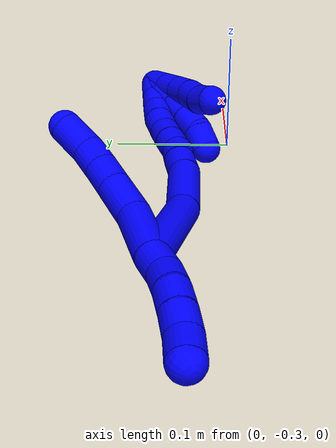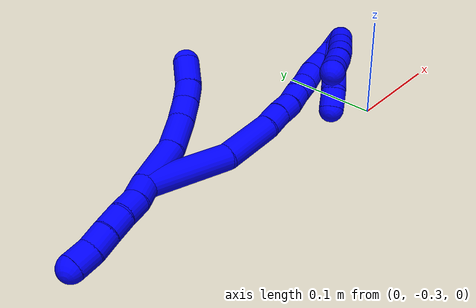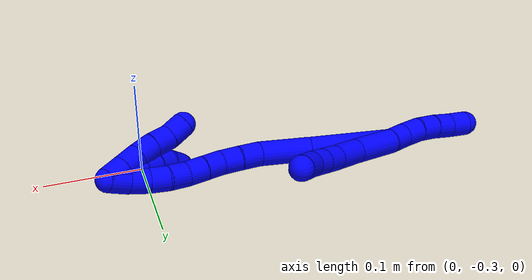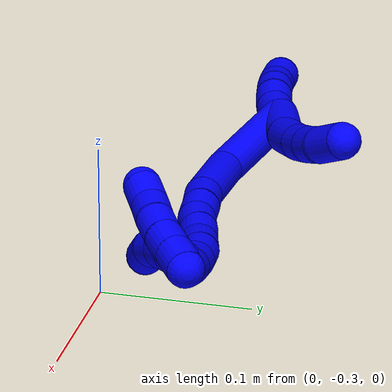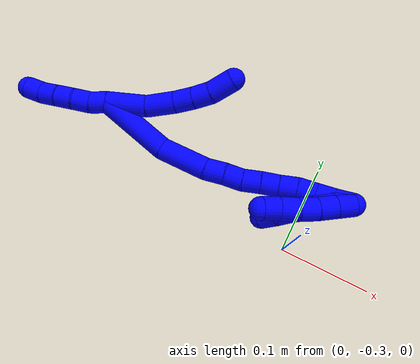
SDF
<sdf version="1.7">
 <world name="default">
  <model name="1">
   <static>0</static>
   <link name="1">
    <collision name="collision-cylinder-e_1_2_8">
     <pose>0.002755 0.001664 -0.023117 -3.06973 0.118313 -2.05056</pose>
     <geometry><cylinder><radius>0.0125</radius><length>0.046679</length></cylinder></geometry>
     <surface>
      <friction><ode><mu>1.16</mu><mu2>1.16</mu2><slip1>0</slip1><slip2>0</slip2></ode></friction>
      <contact><ode><kp>1e+06</kp><kd>1</kd><max_vel>0</max_vel><min_depth>0.001</min_depth></ode></contact>
     </surface>
    </collision>
    <visual name="visual-cylinder-e_1_2_8">
     <pose>0.002755 0.001664 -0.023117 -3.06973 0.118313 -2.05056</pose>
     <geometry><cylinder><radius>0.0125</radius><length>0.046679</length></cylinder></geometry>
     <material><ambient>0 0 1 1</ambient></material>
    </visual>
    <collision name="collision-cylinder-e_2_8_9">
     <pose>0.003696 0.00569 -0.06269 -2.99902 -0.108696 1.30209</pose>
     <geometry><cylinder><radius>0.0125</radius><length>0.033448</length></cylinder></geometry>
     <surface>
      <friction><ode><mu>1.16</mu><mu2>1.16</mu2><slip1>0</slip1><slip2>0</slip2></ode></friction>
      <contact><ode><kp>1e+06</kp><kd>1</kd><max_vel>0</max_vel><min_depth>0.001</min_depth></ode></contact>
     </surface>
    </collision>
    <visual name="visual-cylinder-e_2_8_9">
     <pose>0.003696 0.00569 -0.06269 -2.99902 -0.108696 1.30209</pose>
     <geometry><cylinder><radius>0.0125</radius><length>0.033448</length></cylinder></geometry>
     <material><ambient>0 0 1 1</ambient></material>
    </visual>
    <collision name="collision-cylinder-e_3_9_10">
     <pose>-2e-06 0.01026 -0.089709 -2.93561 -0.172765 1.3948</pose>
     <geometry><cylinder><radius>0.0125</radius><length>0.021907</length></cylinder></geometry>
     <surface>
      <friction><ode><mu>1.16</mu><mu2>1.16</mu2><slip1>0</slip1><slip2>0</slip2></ode></friction>
      <contact><ode><kp>1e+06</kp><kd>1</kd><max_vel>0</max_vel><min_depth>0.001</min_depth></ode></contact>
     </surface>
    </collision>
    <visual name="visual-cylinder-e_3_9_10">
     <pose>-2e-06 0.01026 -0.089709 -2.93561 -0.172765 1.3948</pose>
     <geometry><cylinder><radius>0.0125</radius><length>0.021907</length></cylinder></geometry>
     <material><ambient>0 0 1 1</ambient></material>
    </visual>
    <collision name="collision-cylinder-e_4_10_11">
     <pose>-0.004249 0.014768 -0.109858 -2.90598 -0.235351 1.56969</pose>
     <geometry><cylinder><radius>0.0125</radius><length>0.020277</length></cylinder></geometry>
     <surface>
      <friction><ode><mu>1.16</mu><mu2>1.16</mu2><slip1>0</slip1><slip2>0</slip2></ode></friction>
      <contact><ode><kp>1e+06</kp><kd>1</kd><max_vel>0</max_vel><min_depth>0.001</min_depth></ode></contact>
     </surface>
    </collision>
    <visual name="visual-cylinder-e_4_10_11">
     <pose>-0.004249 0.014768 -0.109858 -2.90598 -0.235351 1.56969</pose>
     <geometry><cylinder><radius>0.0125</radius><length>0.020277</length></cylinder></geometry>
     <material><ambient>0 0 1 1</ambient></material>
    </visual>
    <collision name="collision-cylinder-e_5_11_6">
     <pose>-0.012753 0.020597 -0.131341 -2.85332 -0.459518 2.0308</pose>
     <geometry><cylinder><radius>0.0125</radius><length>0.027689</length></cylinder></geometry>
     <surface>
      <friction><ode><mu>1.16</mu><mu2>1.16</mu2><slip1>0</slip1><slip2>0</slip2></ode></friction>
      <contact><ode><kp>1e+06</kp><kd>1</kd><max_vel>0</max_vel><min_depth>0.001</min_depth></ode></contact>
     </surface>
    </collision>
    <visual name="visual-cylinder-e_5_11_6">
     <pose>-0.012753 0.020597 -0.131341 -2.85332 -0.459518 2.0308</pose>
     <geometry><cylinder><radius>0.0125</radius><length>0.027689</length></cylinder></geometry>
     <material><ambient>0 0 1 1</ambient></material>
    </visual>
    <collision name="collision-cylinder-e_1_2_12">
     <pose>2.4e-05 -0.000102 0.009999 0.010167 0.002374 1.2e-05</pose>
     <geometry><cylinder><radius>0.0125</radius><length>0.02</length></cylinder></geometry>
     <surface>
      <friction><ode><mu>1.16</mu><mu2>1.16</mu2><slip1>0</slip1><slip2>0</slip2></ode></friction>
      <contact><ode><kp>1e+06</kp><kd>1</kd><max_vel>0</max_vel><min_depth>0.001</min_depth></ode></contact>
     </surface>
    </collision>
    <visual name="visual-cylinder-e_1_2_12">
     <pose>2.4e-05 -0.000102 0.009999 0.010167 0.002374 1.2e-05</pose>
     <geometry><cylinder><radius>0.0125</radius><length>0.02</length></cylinder></geometry>
     <material><ambient>0 0 1 1</ambient></material>
    </visual>
    <collision name="collision-cylinder-e_2_12_13">
     <pose>-0.002052 0.000295 0.029763 -0.05104 -0.211518 0.005419</pose>
     <geometry><cylinder><radius>0.0125</radius><length>0.02</length></cylinder></geometry>
     <surface>
      <friction><ode><mu>1.16</mu><mu2>1.16</mu2><slip1>0</slip1><slip2>0</slip2></ode></friction>
      <contact><ode><kp>1e+06</kp><kd>1</kd><max_vel>0</max_vel><min_depth>0.001</min_depth></ode></contact>
     </surface>
    </collision>
    <visual name="visual-cylinder-e_2_12_13">
     <pose>-0.002052 0.000295 0.029763 -0.05104 -0.211518 0.005419</pose>
     <geometry><cylinder><radius>0.0125</radius><length>0.02</length></cylinder></geometry>
     <material><ambient>0 0 1 1</ambient></material>
    </visual>
    <collision name="collision-cylinder-e_3_13_14">
     <pose>-0.006236 -0.000306 0.049246 0.112782 -0.20996 -0.011896</pose>
     <geometry><cylinder><radius>0.0125</radius><length>0.02</length></cylinder></geometry>
     <surface>
      <friction><ode><mu>1.16</mu><mu2>1.16</mu2><slip1>0</slip1><slip2>0</slip2></ode></friction>
      <contact><ode><kp>1e+06</kp><kd>1</kd><max_vel>0</max_vel><min_depth>0.001</min_depth></ode></contact>
     </surface>
    </collision>
    <visual name="visual-cylinder-e_3_13_14">
     <pose>-0.006236 -0.000306 0.049246 0.112782 -0.20996 -0.011896</pose>
     <geometry><cylinder><radius>0.0125</radius><length>0.02</length></cylinder></geometry>
     <material><ambient>0 0 1 1</ambient></material>
    </visual>
    <collision name="collision-cylinder-e_4_14_15">
     <pose>-0.010418 -0.003335 0.06855 0.198457 -0.211352 -0.021119</pose>
     <geometry><cylinder><radius>0.0125</radius><length>0.02</length></cylinder></geometry>
     <surface>
      <friction><ode><mu>1.16</mu><mu2>1.16</mu2><slip1>0</slip1><slip2>0</slip2></ode></friction>
      <contact><ode><kp>1e+06</kp><kd>1</kd><max_vel>0</max_vel><min_depth>0.001</min_depth></ode></contact>
     </surface>
    </collision>
    <visual name="visual-cylinder-e_4_14_15">
     <pose>-0.010418 -0.003335 0.06855 0.198457 -0.211352 -0.021119</pose>
     <geometry><cylinder><radius>0.0125</radius><length>0.02</length></cylinder></geometry>
     <material><ambient>0 0 1 1</ambient></material>
    </visual>
    <collision name="collision-cylinder-e_5_15_5">
     <pose>-0.015999 -0.0063 0.087451 0.110856 -0.355825 -0.019953</pose>
     <geometry><cylinder><radius>0.0125</radius><length>0.02</length></cylinder></geometry>
     <surface>
      <friction><ode><mu>1.16</mu><mu2>1.16</mu2><slip1>0</slip1><slip2>0</slip2></ode></friction>
      <contact><ode><kp>1e+06</kp><kd>1</kd><max_vel>0</max_vel><min_depth>0.001</min_depth></ode></contact>
     </surface>
    </collision>
    <visual name="visual-cylinder-e_5_15_5">
     <pose>-0.015999 -0.0063 0.087451 0.110856 -0.355825 -0.019953</pose>
     <geometry><cylinder><radius>0.0125</radius><length>0.02</length></cylinder></geometry>
     <material><ambient>0 0 1 1</ambient></material>
    </visual>
    <collision name="collision-cylinder-e_1_2_16">
     <pose>0.026603 0.000618 -0.031802 -3.12215 0.696519 -3.08807</pose>
     <geometry><cylinder><radius>0.0125</radius><length>0.082933</length></cylinder></geometry>
     <surface>
      <friction><ode><mu>1.16</mu><mu2>1.16</mu2><slip1>0</slip1><slip2>0</slip2></ode></friction>
      <contact><ode><kp>1e+06</kp><kd>1</kd><max_vel>0</max_vel><min_depth>0.001</min_depth></ode></contact>
     </surface>
    </collision>
    <visual name="visual-cylinder-e_1_2_16">
     <pose>0.026603 0.000618 -0.031802 -3.12215 0.696519 -3.08807</pose>
     <geometry><cylinder><radius>0.0125</radius><length>0.082933</length></cylinder></geometry>
     <material><ambient>0 0 1 1</ambient></material>
    </visual>
    <collision name="collision-cylinder-e_2_16_17">
     <pose>0.064667 0.00443 -0.088264 -3.01279 0.431899 -2.56975</pose>
     <geometry><cylinder><radius>0.0125</radius><length>0.05476</length></cylinder></geometry>
     <surface>
      <friction><ode><mu>1.16</mu><mu2>1.16</mu2><slip1>0</slip1><slip2>0</slip2></ode></friction>
      <contact><ode><kp>1e+06</kp><kd>1</kd><max_vel>0</max_vel><min_depth>0.001</min_depth></ode></contact>
     </surface>
    </collision>
    <visual name="visual-cylinder-e_2_16_17">
     <pose>0.064667 0.00443 -0.088264 -3.01279 0.431899 -2.56975</pose>
     <geometry><cylinder><radius>0.0125</radius><length>0.05476</length></cylinder></geometry>
     <material><ambient>0 0 1 1</ambient></material>
    </visual>
    <collision name="collision-cylinder-e_3_17_18">
     <pose>0.078866 0.008323 -0.12355 -3.07592 0.251663 -2.63352</pose>
     <geometry><cylinder><radius>0.0125</radius><length>0.021989</length></cylinder></geometry>
     <surface>
      <friction><ode><mu>1.16</mu><mu2>1.16</mu2><slip1>0</slip1><slip2>0</slip2></ode></friction>
      <contact><ode><kp>1e+06</kp><kd>1</kd><max_vel>0</max_vel><min_depth>0.001</min_depth></ode></contact>
     </surface>
    </collision>
    <visual name="visual-cylinder-e_3_17_18">
     <pose>0.078866 0.008323 -0.12355 -3.07592 0.251663 -2.63352</pose>
     <geometry><cylinder><radius>0.0125</radius><length>0.021989</length></cylinder></geometry>
     <material><ambient>0 0 1 1</ambient></material>
    </visual>
    <collision name="collision-cylinder-e_4_18_19">
     <pose>0.084912 0.009124 -0.143624 -3.13078 0.336766 -3.078</pose>
     <geometry><cylinder><radius>0.0125</radius><length>0.020024</length></cylinder></geometry>
     <surface>
      <friction><ode><mu>1.16</mu><mu2>1.16</mu2><slip1>0</slip1><slip2>0</slip2></ode></friction>
      <contact><ode><kp>1e+06</kp><kd>1</kd><max_vel>0</max_vel><min_depth>0.001</min_depth></ode></contact>
     </surface>
    </collision>
    <visual name="visual-cylinder-e_4_18_19">
     <pose>0.084912 0.009124 -0.143624 -3.13078 0.336766 -3.078</pose>
     <geometry><cylinder><radius>0.0125</radius><length>0.020024</length></cylinder></geometry>
     <material><ambient>0 0 1 1</ambient></material>
    </visual>
    <collision name="collision-cylinder-e_5_19_20">
     <pose>0.089494 0.009356 -0.16301 -3.12854 0.127385 -2.93764</pose>
     <geometry><cylinder><radius>0.0125</radius><length>0.020038</length></cylinder></geometry>
     <surface>
      <friction><ode><mu>1.16</mu><mu2>1.16</mu2><slip1>0</slip1><slip2>0</slip2></ode></friction>
      <contact><ode><kp>1e+06</kp><kd>1</kd><max_vel>0</max_vel><min_depth>0.001</min_depth></ode></contact>
     </surface>
    </collision>
    <visual name="visual-cylinder-e_5_19_20">
     <pose>0.089494 0.009356 -0.16301 -3.12854 0.127385 -2.93764</pose>
     <geometry><cylinder><radius>0.0125</radius><length>0.020038</length></cylinder></geometry>
     <material><ambient>0 0 1 1</ambient></material>
    </visual>
    <collision name="collision-cylinder-e_6_20_21">
     <pose>0.092642 0.009409 -0.182817 3.13381 0.18777 3.05898</pose>
     <geometry><cylinder><radius>0.0125</radius><length>0.020092</length></cylinder></geometry>
     <surface>
      <friction><ode><mu>1.16</mu><mu2>1.16</mu2><slip1>0</slip1><slip2>0</slip2></ode></friction>
      <contact><ode><kp>1e+06</kp><kd>1</kd><max_vel>0</max_vel><min_depth>0.001</min_depth></ode></contact>
     </surface>
    </collision>
    <visual name="visual-cylinder-e_6_20_21">
     <pose>0.092642 0.009409 -0.182817 3.13381 0.18777 3.05898</pose>
     <geometry><cylinder><radius>0.0125</radius><length>0.020092</length></cylinder></geometry>
     <material><ambient>0 0 1 1</ambient></material>
    </visual>
    <collision name="collision-cylinder-e_7_21_22">
     <pose>0.095799 0.0104 -0.202579 -3.03409 0.128123 -1.74575</pose>
     <geometry><cylinder><radius>0.0125</radius><length>0.020066</length></cylinder></geometry>
     <surface>
      <friction><ode><mu>1.16</mu><mu2>1.16</mu2><slip1>0</slip1><slip2>0</slip2></ode></friction>
      <contact><ode><kp>1e+06</kp><kd>1</kd><max_vel>0</max_vel><min_depth>0.001</min_depth></ode></contact>
     </surface>
    </collision>
    <visual name="visual-cylinder-e_7_21_22">
     <pose>0.095799 0.0104 -0.202579 -3.03409 0.128123 -1.74575</pose>
     <geometry><cylinder><radius>0.0125</radius><length>0.020066</length></cylinder></geometry>
     <material><ambient>0 0 1 1</ambient></material>
    </visual>
    <collision name="collision-cylinder-e_8_22_23">
     <pose>0.1001 0.012856 -0.22193 -2.99578 0.305883 -2.25666</pose>
     <geometry><cylinder><radius>0.0125</radius><length>0.020049</length></cylinder></geometry>
     <surface>
      <friction><ode><mu>1.16</mu><mu2>1.16</mu2><slip1>0</slip1><slip2>0</slip2></ode></friction>
      <contact><ode><kp>1e+06</kp><kd>1</kd><max_vel>0</max_vel><min_depth>0.001</min_depth></ode></contact>
     </surface>
    </collision>
    <visual name="visual-cylinder-e_8_22_23">
     <pose>0.1001 0.012856 -0.22193 -2.99578 0.305883 -2.25666</pose>
     <geometry><cylinder><radius>0.0125</radius><length>0.020049</length></cylinder></geometry>
     <material><ambient>0 0 1 1</ambient></material>
    </visual>
    <collision name="collision-cylinder-e_9_23_24">
     <pose>0.105997 0.016666 -0.240671 -2.88644 0.291503 -1.70525</pose>
     <geometry><cylinder><radius>0.0125</radius><length>0.020033</length></cylinder></geometry>
     <surface>
      <friction><ode><mu>1.16</mu><mu2>1.16</mu2><slip1>0</slip1><slip2>0</slip2></ode></friction>
      <contact><ode><kp>1e+06</kp><kd>1</kd><max_vel>0</max_vel><min_depth>0.001</min_depth></ode></contact>
     </surface>
    </collision>
    <visual name="visual-cylinder-e_9_23_24">
     <pose>0.105997 0.016666 -0.240671 -2.88644 0.291503 -1.70525</pose>
     <geometry><cylinder><radius>0.0125</radius><length>0.020033</length></cylinder></geometry>
     <material><ambient>0 0 1 1</ambient></material>
    </visual>
    <collision name="collision-cylinder-e_10_24_1">
     <pose>0.111251 0.022536 -0.259044 -2.77897 0.239617 -1.16211</pose>
     <geometry><cylinder><radius>0.0125</radius><length>0.020015</length></cylinder></geometry>
     <surface>
      <friction><ode><mu>1.16</mu><mu2>1.16</mu2><slip1>0</slip1><slip2>0</slip2></ode></friction>
      <contact><ode><kp>1e+06</kp><kd>1</kd><max_vel>0</max_vel><min_depth>0.001</min_depth></ode></contact>
     </surface>
    </collision>
    <visual name="visual-cylinder-e_10_24_1">
     <pose>0.111251 0.022536 -0.259044 -2.77897 0.239617 -1.16211</pose>
     <geometry><cylinder><radius>0.0125</radius><length>0.020015</length></cylinder></geometry>
     <material><ambient>0 0 1 1</ambient></material>
    </visual>
    <collision name="collision-cylinder-e_1_1_25">
     <pose>0.112839 0.024744 -0.258242 0.124799 -0.078813 -0.004927</pose>
     <geometry><cylinder><radius>0.0125</radius><length>0.02</length></cylinder></geometry>
     <surface>
      <friction><ode><mu>1.16</mu><mu2>1.16</mu2><slip1>0</slip1><slip2>0</slip2></ode></friction>
      <contact><ode><kp>1e+06</kp><kd>1</kd><max_vel>0</max_vel><min_depth>0.001</min_depth></ode></contact>
     </surface>
    </collision>
    <visual name="visual-cylinder-e_1_1_25">
     <pose>0.112839 0.024744 -0.258242 0.124799 -0.078813 -0.004927</pose>
     <geometry><cylinder><radius>0.0125</radius><length>0.02</length></cylinder></geometry>
     <material><ambient>0 0 1 1</ambient></material>
    </visual>
    <collision name="collision-cylinder-e_2_25_26">
     <pose>0.114057 0.022871 -0.238574 0.064623 0.201925 0.006549</pose>
     <geometry><cylinder><radius>0.0125</radius><length>0.02</length></cylinder></geometry>
     <surface>
      <friction><ode><mu>1.16</mu><mu2>1.16</mu2><slip1>0</slip1><slip2>0</slip2></ode></friction>
      <contact><ode><kp>1e+06</kp><kd>1</kd><max_vel>0</max_vel><min_depth>0.001</min_depth></ode></contact>
     </surface>
    </collision>
    <visual name="visual-cylinder-e_2_25_26">
     <pose>0.114057 0.022871 -0.238574 0.064623 0.201925 0.006549</pose>
     <geometry><cylinder><radius>0.0125</radius><length>0.02</length></cylinder></geometry>
     <material><ambient>0 0 1 1</ambient></material>
    </visual>
    <collision name="collision-cylinder-e_3_26_27">
     <pose>0.117987 0.020842 -0.219084 0.142708 0.193709 0.013889</pose>
     <geometry><cylinder><radius>0.0125</radius><length>0.02</length></cylinder></geometry>
     <surface>
      <friction><ode><mu>1.16</mu><mu2>1.16</mu2><slip1>0</slip1><slip2>0</slip2></ode></friction>
      <contact><ode><kp>1e+06</kp><kd>1</kd><max_vel>0</max_vel><min_depth>0.001</min_depth></ode></contact>
     </surface>
    </collision>
    <visual name="visual-cylinder-e_3_26_27">
     <pose>0.117987 0.020842 -0.219084 0.142708 0.193709 0.013889</pose>
     <geometry><cylinder><radius>0.0125</radius><length>0.02</length></cylinder></geometry>
     <material><ambient>0 0 1 1</ambient></material>
    </visual>
    <collision name="collision-cylinder-e_4_27_28">
     <pose>0.122382 0.01724 -0.199935 0.229762 0.249548 0.028944</pose>
     <geometry><cylinder><radius>0.0125</radius><length>0.02</length></cylinder></geometry>
     <surface>
      <friction><ode><mu>1.16</mu><mu2>1.16</mu2><slip1>0</slip1><slip2>0</slip2></ode></friction>
      <contact><ode><kp>1e+06</kp><kd>1</kd><max_vel>0</max_vel><min_depth>0.001</min_depth></ode></contact>
     </surface>
    </collision>
    <visual name="visual-cylinder-e_4_27_28">
     <pose>0.122382 0.01724 -0.199935 0.229762 0.249548 0.028944</pose>
     <geometry><cylinder><radius>0.0125</radius><length>0.02</length></cylinder></geometry>
     <material><ambient>0 0 1 1</ambient></material>
    </visual>
    <collision name="collision-cylinder-e_5_28_4">
     <pose>0.12686 0.0097 -0.182282 0.575638 0.202219 0.060052</pose>
     <geometry><cylinder><radius>0.0125</radius><length>0.02</length></cylinder></geometry>
     <surface>
      <friction><ode><mu>1.16</mu><mu2>1.16</mu2><slip1>0</slip1><slip2>0</slip2></ode></friction>
      <contact><ode><kp>1e+06</kp><kd>1</kd><max_vel>0</max_vel><min_depth>0.001</min_depth></ode></contact>
     </surface>
    </collision>
    <visual name="visual-cylinder-e_5_28_4">
     <pose>0.12686 0.0097 -0.182282 0.575638 0.202219 0.060052</pose>
     <geometry><cylinder><radius>0.0125</radius><length>0.02</length></cylinder></geometry>
     <material><ambient>0 0 1 1</ambient></material>
    </visual>
    <collision name="collision-cylinder-e_1_1_29">
     <pose>0.114672 0.028413 -0.258489 -0.246617 0.10482 -0.013003</pose>
     <geometry><cylinder><radius>0.0125</radius><length>0.02</length></cylinder></geometry>
     <surface>
      <friction><ode><mu>1.16</mu><mu2>1.16</mu2><slip1>0</slip1><slip2>0</slip2></ode></friction>
      <contact><ode><kp>1e+06</kp><kd>1</kd><max_vel>0</max_vel><min_depth>0.001</min_depth></ode></contact>
     </surface>
    </collision>
    <visual name="visual-cylinder-e_1_1_29">
     <pose>0.114672 0.028413 -0.258489 -0.246617 0.10482 -0.013003</pose>
     <geometry><cylinder><radius>0.0125</radius><length>0.02</length></cylinder></geometry>
     <material><ambient>0 0 1 1</ambient></material>
    </visual>
    <collision name="collision-cylinder-e_2_29_30">
     <pose>0.116775 0.033285 -0.239206 -0.248392 0.105875 -0.013229</pose>
     <geometry><cylinder><radius>0.0125</radius><length>0.02</length></cylinder></geometry>
     <surface>
      <friction><ode><mu>1.16</mu><mu2>1.16</mu2><slip1>0</slip1><slip2>0</slip2></ode></friction>
      <contact><ode><kp>1e+06</kp><kd>1</kd><max_vel>0</max_vel><min_depth>0.001</min_depth></ode></contact>
     </surface>
    </collision>
    <visual name="visual-cylinder-e_2_29_30">
     <pose>0.116775 0.033285 -0.239206 -0.248392 0.105875 -0.013229</pose>
     <geometry><cylinder><radius>0.0125</radius><length>0.02</length></cylinder></geometry>
     <material><ambient>0 0 1 1</ambient></material>
    </visual>
    <collision name="collision-cylinder-e_3_30_31">
     <pose>0.118136 0.038087 -0.219853 -0.238027 0.030374 -0.003632</pose>
     <geometry><cylinder><radius>0.0125</radius><length>0.02</length></cylinder></geometry>
     <surface>
      <friction><ode><mu>1.16</mu><mu2>1.16</mu2><slip1>0</slip1><slip2>0</slip2></ode></friction>
      <contact><ode><kp>1e+06</kp><kd>1</kd><max_vel>0</max_vel><min_depth>0.001</min_depth></ode></contact>
     </surface>
    </collision>
    <visual name="visual-cylinder-e_3_30_31">
     <pose>0.118136 0.038087 -0.219853 -0.238027 0.030374 -0.003632</pose>
     <geometry><cylinder><radius>0.0125</radius><length>0.02</length></cylinder></geometry>
     <material><ambient>0 0 1 1</ambient></material>
    </visual>
    <collision name="collision-cylinder-e_4_31_32">
     <pose>0.117907 0.041676 -0.20023 -0.123774 -0.053296 0.003303</pose>
     <geometry><cylinder><radius>0.0125</radius><length>0.02</length></cylinder></geometry>
     <surface>
      <friction><ode><mu>1.16</mu><mu2>1.16</mu2><slip1>0</slip1><slip2>0</slip2></ode></friction>
      <contact><ode><kp>1e+06</kp><kd>1</kd><max_vel>0</max_vel><min_depth>0.001</min_depth></ode></contact>
     </surface>
    </collision>
    <visual name="visual-cylinder-e_4_31_32">
     <pose>0.117907 0.041676 -0.20023 -0.123774 -0.053296 0.003303</pose>
     <geometry><cylinder><radius>0.0125</radius><length>0.02</length></cylinder></geometry>
     <material><ambient>0 0 1 1</ambient></material>
    </visual>
    <collision name="collision-cylinder-e_5_32_3">
     <pose>0.117301 0.0465 -0.180988 -0.367301 -0.007336 0.001363</pose>
     <geometry><cylinder><radius>0.0125</radius><length>0.02</length></cylinder></geometry>
     <surface>
      <friction><ode><mu>1.16</mu><mu2>1.16</mu2><slip1>0</slip1><slip2>0</slip2></ode></friction>
      <contact><ode><kp>1e+06</kp><kd>1</kd><max_vel>0</max_vel><min_depth>0.001</min_depth></ode></contact>
     </surface>
    </collision>
    <visual name="visual-cylinder-e_5_32_3">
     <pose>0.117301 0.0465 -0.180988 -0.367301 -0.007336 0.001363</pose>
     <geometry><cylinder><radius>0.0125</radius><length>0.02</length></cylinder></geometry>
     <material><ambient>0 0 1 1</ambient></material>
    </visual>
    <collision name="collision-sphere-3">
     <pose>0.117227 0.050091 -0.171655 0 -0 0</pose>
     <geometry><sphere><radius>0.0125</radius></sphere></geometry>
     <surface>
      <friction><ode><mu>1.16</mu><mu2>1.16</mu2><slip1>0</slip1><slip2>0</slip2></ode></friction>
      <contact><ode><kp>1e+06</kp><kd>1</kd><max_vel>0</max_vel><min_depth>0.001</min_depth></ode></contact>
     </surface>
    </collision>
    <visual name="visual-sphere-3">
     <pose>0.117227 0.050091 -0.171655 0 -0 0</pose>
     <geometry><sphere><radius>0.0125</radius></sphere></geometry>
     <material><ambient>0 0 1 1</ambient></material>
    </visual>
    <collision name="collision-sphere-32">
     <pose>0.117374 0.042909 -0.190321 0 -0 0</pose>
     <geometry><sphere><radius>0.0125</radius></sphere></geometry>
     <surface>
      <friction><ode><mu>1.16</mu><mu2>1.16</mu2><slip1>0</slip1><slip2>0</slip2></ode></friction>
      <contact><ode><kp>1e+06</kp><kd>1</kd><max_vel>0</max_vel><min_depth>0.001</min_depth></ode></contact>
     </surface>
    </collision>
    <visual name="visual-sphere-32">
     <pose>0.117374 0.042909 -0.190321 0 -0 0</pose>
     <geometry><sphere><radius>0.0125</radius></sphere></geometry>
     <material><ambient>0 0 1 1</ambient></material>
    </visual>
    <collision name="collision-sphere-31">
     <pose>0.118439 0.040444 -0.21014 0 -0 0</pose>
     <geometry><sphere><radius>0.0125</radius></sphere></geometry>
     <surface>
      <friction><ode><mu>1.16</mu><mu2>1.16</mu2><slip1>0</slip1><slip2>0</slip2></ode></friction>
      <contact><ode><kp>1e+06</kp><kd>1</kd><max_vel>0</max_vel><min_depth>0.001</min_depth></ode></contact>
     </surface>
    </collision>
    <visual name="visual-sphere-31">
     <pose>0.118439 0.040444 -0.21014 0 -0 0</pose>
     <geometry><sphere><radius>0.0125</radius></sphere></geometry>
     <material><ambient>0 0 1 1</ambient></material>
    </visual>
    <collision name="collision-sphere-30">
     <pose>0.117832 0.03573 -0.229567 0 -0 0</pose>
     <geometry><sphere><radius>0.0125</radius></sphere></geometry>
     <surface>
      <friction><ode><mu>1.16</mu><mu2>1.16</mu2><slip1>0</slip1><slip2>0</slip2></ode></friction>
      <contact><ode><kp>1e+06</kp><kd>1</kd><max_vel>0</max_vel><min_depth>0.001</min_depth></ode></contact>
     </surface>
    </collision>
    <visual name="visual-sphere-30">
     <pose>0.117832 0.03573 -0.229567 0 -0 0</pose>
     <geometry><sphere><radius>0.0125</radius></sphere></geometry>
     <material><ambient>0 0 1 1</ambient></material>
    </visual>
    <collision name="collision-sphere-29">
     <pose>0.115718 0.030841 -0.248845 0 -0 0</pose>
     <geometry><sphere><radius>0.0125</radius></sphere></geometry>
     <surface>
      <friction><ode><mu>1.16</mu><mu2>1.16</mu2><slip1>0</slip1><slip2>0</slip2></ode></friction>
      <contact><ode><kp>1e+06</kp><kd>1</kd><max_vel>0</max_vel><min_depth>0.001</min_depth></ode></contact>
     </surface>
    </collision>
    <visual name="visual-sphere-29">
     <pose>0.115718 0.030841 -0.248845 0 -0 0</pose>
     <geometry><sphere><radius>0.0125</radius></sphere></geometry>
     <material><ambient>0 0 1 1</ambient></material>
    </visual>
    <collision name="collision-sphere-4">
     <pose>0.128869 0.004367 -0.174065 0 -0 0</pose>
     <geometry><sphere><radius>0.0125</radius></sphere></geometry>
     <surface>
      <friction><ode><mu>1.16</mu><mu2>1.16</mu2><slip1>0</slip1><slip2>0</slip2></ode></friction>
      <contact><ode><kp>1e+06</kp><kd>1</kd><max_vel>0</max_vel><min_depth>0.001</min_depth></ode></contact>
     </surface>
    </collision>
    <visual name="visual-sphere-4">
     <pose>0.128869 0.004367 -0.174065 0 -0 0</pose>
     <geometry><sphere><radius>0.0125</radius></sphere></geometry>
     <material><ambient>0 0 1 1</ambient></material>
    </visual>
    <collision name="collision-sphere-28">
     <pose>0.124852 0.015033 -0.1905 0 -0 0</pose>
     <geometry><sphere><radius>0.0125</radius></sphere></geometry>
     <surface>
      <friction><ode><mu>1.16</mu><mu2>1.16</mu2><slip1>0</slip1><slip2>0</slip2></ode></friction>
      <contact><ode><kp>1e+06</kp><kd>1</kd><max_vel>0</max_vel><min_depth>0.001</min_depth></ode></contact>
     </surface>
    </collision>
    <visual name="visual-sphere-28">
     <pose>0.124852 0.015033 -0.1905 0 -0 0</pose>
     <geometry><sphere><radius>0.0125</radius></sphere></geometry>
     <material><ambient>0 0 1 1</ambient></material>
    </visual>
    <collision name="collision-sphere-27">
     <pose>0.119912 0.019447 -0.209371 0 -0 0</pose>
     <geometry><sphere><radius>0.0125</radius></sphere></geometry>
     <surface>
      <friction><ode><mu>1.16</mu><mu2>1.16</mu2><slip1>0</slip1><slip2>0</slip2></ode></friction>
      <contact><ode><kp>1e+06</kp><kd>1</kd><max_vel>0</max_vel><min_depth>0.001</min_depth></ode></contact>
     </surface>
    </collision>
    <visual name="visual-sphere-27">
     <pose>0.119912 0.019447 -0.209371 0 -0 0</pose>
     <geometry><sphere><radius>0.0125</radius></sphere></geometry>
     <material><ambient>0 0 1 1</ambient></material>
    </visual>
    <collision name="collision-sphere-26">
     <pose>0.116062 0.022238 -0.228797 0 -0 0</pose>
     <geometry><sphere><radius>0.0125</radius></sphere></geometry>
     <surface>
      <friction><ode><mu>1.16</mu><mu2>1.16</mu2><slip1>0</slip1><slip2>0</slip2></ode></friction>
      <contact><ode><kp>1e+06</kp><kd>1</kd><max_vel>0</max_vel><min_depth>0.001</min_depth></ode></contact>
     </surface>
    </collision>
    <visual name="visual-sphere-26">
     <pose>0.116062 0.022238 -0.228797 0 -0 0</pose>
     <geometry><sphere><radius>0.0125</radius></sphere></geometry>
     <material><ambient>0 0 1 1</ambient></material>
    </visual>
    <collision name="collision-sphere-25">
     <pose>0.112051 0.023503 -0.24835 0 -0 0</pose>
     <geometry><sphere><radius>0.0125</radius></sphere></geometry>
     <surface>
      <friction><ode><mu>1.16</mu><mu2>1.16</mu2><slip1>0</slip1><slip2>0</slip2></ode></friction>
      <contact><ode><kp>1e+06</kp><kd>1</kd><max_vel>0</max_vel><min_depth>0.001</min_depth></ode></contact>
     </surface>
    </collision>
    <visual name="visual-sphere-25">
     <pose>0.112051 0.023503 -0.24835 0 -0 0</pose>
     <geometry><sphere><radius>0.0125</radius></sphere></geometry>
     <material><ambient>0 0 1 1</ambient></material>
    </visual>
    <collision name="collision-sphere-1">
     <pose>0.113626 0.025985 -0.268133 0 -0 0</pose>
     <geometry><sphere><radius>0.0125</radius></sphere></geometry>
     <surface>
      <friction><ode><mu>1.16</mu><mu2>1.16</mu2><slip1>0</slip1><slip2>0</slip2></ode></friction>
      <contact><ode><kp>1e+06</kp><kd>1</kd><max_vel>0</max_vel><min_depth>0.001</min_depth></ode></contact>
     </surface>
    </collision>
    <visual name="visual-sphere-1">
     <pose>0.113626 0.025985 -0.268133 0 -0 0</pose>
     <geometry><sphere><radius>0.0125</radius></sphere></geometry>
     <material><ambient>0 0 1 1</ambient></material>
    </visual>
    <collision name="collision-sphere-24">
     <pose>0.108876 0.019088 -0.249954 0 -0 0</pose>
     <geometry><sphere><radius>0.0125</radius></sphere></geometry>
     <surface>
      <friction><ode><mu>1.16</mu><mu2>1.16</mu2><slip1>0</slip1><slip2>0</slip2></ode></friction>
      <contact><ode><kp>1e+06</kp><kd>1</kd><max_vel>0</max_vel><min_depth>0.001</min_depth></ode></contact>
     </surface>
    </collision>
    <visual name="visual-sphere-24">
     <pose>0.108876 0.019088 -0.249954 0 -0 0</pose>
     <geometry><sphere><radius>0.0125</radius></sphere></geometry>
     <material><ambient>0 0 1 1</ambient></material>
    </visual>
    <collision name="collision-sphere-23">
     <pose>0.103118 0.014245 -0.231388 0 -0 0</pose>
     <geometry><sphere><radius>0.0125</radius></sphere></geometry>
     <surface>
      <friction><ode><mu>1.16</mu><mu2>1.16</mu2><slip1>0</slip1><slip2>0</slip2></ode></friction>
      <contact><ode><kp>1e+06</kp><kd>1</kd><max_vel>0</max_vel><min_depth>0.001</min_depth></ode></contact>
     </surface>
    </collision>
    <visual name="visual-sphere-23">
     <pose>0.103118 0.014245 -0.231388 0 -0 0</pose>
     <geometry><sphere><radius>0.0125</radius></sphere></geometry>
     <material><ambient>0 0 1 1</ambient></material>
    </visual>
    <collision name="collision-sphere-22">
     <pose>0.097081 0.011467 -0.212472 0 -0 0</pose>
     <geometry><sphere><radius>0.0125</radius></sphere></geometry>
     <surface>
      <friction><ode><mu>1.16</mu><mu2>1.16</mu2><slip1>0</slip1><slip2>0</slip2></ode></friction>
      <contact><ode><kp>1e+06</kp><kd>1</kd><max_vel>0</max_vel><min_depth>0.001</min_depth></ode></contact>
     </surface>
    </collision>
    <visual name="visual-sphere-22">
     <pose>0.097081 0.011467 -0.212472 0 -0 0</pose>
     <geometry><sphere><radius>0.0125</radius></sphere></geometry>
     <material><ambient>0 0 1 1</ambient></material>
    </visual>
    <collision name="collision-sphere-21">
     <pose>0.094517 0.009332 -0.192686 0 -0 0</pose>
     <geometry><sphere><radius>0.0125</radius></sphere></geometry>
     <surface>
      <friction><ode><mu>1.16</mu><mu2>1.16</mu2><slip1>0</slip1><slip2>0</slip2></ode></friction>
      <contact><ode><kp>1e+06</kp><kd>1</kd><max_vel>0</max_vel><min_depth>0.001</min_depth></ode></contact>
     </surface>
    </collision>
    <visual name="visual-sphere-21">
     <pose>0.094517 0.009332 -0.192686 0 -0 0</pose>
     <geometry><sphere><radius>0.0125</radius></sphere></geometry>
     <material><ambient>0 0 1 1</ambient></material>
    </visual>
    <collision name="collision-sphere-6">
     <pose>-0.018893 0.024125 -0.143237 0 -0 0</pose>
     <geometry><sphere><radius>0.0125</radius></sphere></geometry>
     <surface>
      <friction><ode><mu>1.16</mu><mu2>1.16</mu2><slip1>0</slip1><slip2>0</slip2></ode></friction>
      <contact><ode><kp>1e+06</kp><kd>1</kd><max_vel>0</max_vel><min_depth>0.001</min_depth></ode></contact>
     </surface>
    </collision>
    <visual name="visual-sphere-6">
     <pose>-0.018893 0.024125 -0.143237 0 -0 0</pose>
     <geometry><sphere><radius>0.0125</radius></sphere></geometry>
     <material><ambient>0 0 1 1</ambient></material>
    </visual>
    <collision name="collision-sphere-11">
     <pose>-0.006613 0.01707 -0.119444 0 -0 0</pose>
     <geometry><sphere><radius>0.0125</radius></sphere></geometry>
     <surface>
      <friction><ode><mu>1.16</mu><mu2>1.16</mu2><slip1>0</slip1><slip2>0</slip2></ode></friction>
      <contact><ode><kp>1e+06</kp><kd>1</kd><max_vel>0</max_vel><min_depth>0.001</min_depth></ode></contact>
     </surface>
    </collision>
    <visual name="visual-sphere-11">
     <pose>-0.006613 0.01707 -0.119444 0 -0 0</pose>
     <geometry><sphere><radius>0.0125</radius></sphere></geometry>
     <material><ambient>0 0 1 1</ambient></material>
    </visual>
    <collision name="collision-sphere-10">
     <pose>-0.001885 0.012467 -0.100272 0 -0 0</pose>
     <geometry><sphere><radius>0.0125</radius></sphere></geometry>
     <surface>
      <friction><ode><mu>1.16</mu><mu2>1.16</mu2><slip1>0</slip1><slip2>0</slip2></ode></friction>
      <contact><ode><kp>1e+06</kp><kd>1</kd><max_vel>0</max_vel><min_depth>0.001</min_depth></ode></contact>
     </surface>
    </collision>
    <visual name="visual-sphere-10">
     <pose>-0.001885 0.012467 -0.100272 0 -0 0</pose>
     <geometry><sphere><radius>0.0125</radius></sphere></geometry>
     <material><ambient>0 0 1 1</ambient></material>
    </visual>
    <collision name="collision-sphere-9">
     <pose>0.001881 0.008053 -0.079147 0 -0 0</pose>
     <geometry><sphere><radius>0.0125</radius></sphere></geometry>
     <surface>
      <friction><ode><mu>1.16</mu><mu2>1.16</mu2><slip1>0</slip1><slip2>0</slip2></ode></friction>
      <contact><ode><kp>1e+06</kp><kd>1</kd><max_vel>0</max_vel><min_depth>0.001</min_depth></ode></contact>
     </surface>
    </collision>
    <visual name="visual-sphere-9">
     <pose>0.001881 0.008053 -0.079147 0 -0 0</pose>
     <geometry><sphere><radius>0.0125</radius></sphere></geometry>
     <material><ambient>0 0 1 1</ambient></material>
    </visual>
    <collision name="collision-sphere-2">
     <geometry><sphere><radius>0.0125</radius></sphere></geometry>
     <surface>
      <friction><ode><mu>1.16</mu><mu2>1.16</mu2><slip1>0</slip1><slip2>0</slip2></ode></friction>
      <contact><ode><kp>1e+06</kp><kd>1</kd><max_vel>0</max_vel><min_depth>0.001</min_depth></ode></contact>
     </surface>
    </collision>
    <visual name="visual-sphere-2">
     <geometry><sphere><radius>0.0125</radius></sphere></geometry>
     <material><ambient>0 0 1 1</ambient></material>
    </visual>
    <collision name="collision-sphere-19">
     <pose>0.088221 0.009226 -0.153073 0 -0 0</pose>
     <geometry><sphere><radius>0.0125</radius></sphere></geometry>
     <surface>
      <friction><ode><mu>1.16</mu><mu2>1.16</mu2><slip1>0</slip1><slip2>0</slip2></ode></friction>
      <contact><ode><kp>1e+06</kp><kd>1</kd><max_vel>0</max_vel><min_depth>0.001</min_depth></ode></contact>
     </surface>
    </collision>
    <visual name="visual-sphere-19">
     <pose>0.088221 0.009226 -0.153073 0 -0 0</pose>
     <geometry><sphere><radius>0.0125</radius></sphere></geometry>
     <material><ambient>0 0 1 1</ambient></material>
    </visual>
    <collision name="collision-sphere-8">
     <pose>0.00551 0.003328 -0.046233 0 -0 0</pose>
     <geometry><sphere><radius>0.0125</radius></sphere></geometry>
     <surface>
      <friction><ode><mu>1.16</mu><mu2>1.16</mu2><slip1>0</slip1><slip2>0</slip2></ode></friction>
      <contact><ode><kp>1e+06</kp><kd>1</kd><max_vel>0</max_vel><min_depth>0.001</min_depth></ode></contact>
     </surface>
    </collision>
    <visual name="visual-sphere-8">
     <pose>0.00551 0.003328 -0.046233 0 -0 0</pose>
     <geometry><sphere><radius>0.0125</radius></sphere></geometry>
     <material><ambient>0 0 1 1</ambient></material>
    </visual>
    <collision name="collision-sphere-12">
     <pose>4.7e-05 -0.000203 0.019999 0 -0 0</pose>
     <geometry><sphere><radius>0.0125</radius></sphere></geometry>
     <surface>
      <friction><ode><mu>1.16</mu><mu2>1.16</mu2><slip1>0</slip1><slip2>0</slip2></ode></friction>
      <contact><ode><kp>1e+06</kp><kd>1</kd><max_vel>0</max_vel><min_depth>0.001</min_depth></ode></contact>
     </surface>
    </collision>
    <visual name="visual-sphere-12">
     <pose>4.7e-05 -0.000203 0.019999 0 -0 0</pose>
     <geometry><sphere><radius>0.0125</radius></sphere></geometry>
     <material><ambient>0 0 1 1</ambient></material>
    </visual>
    <collision name="collision-sphere-13">
     <pose>-0.004151 0.000794 0.039528 0 -0 0</pose>
     <geometry><sphere><radius>0.0125</radius></sphere></geometry>
     <surface>
      <friction><ode><mu>1.16</mu><mu2>1.16</mu2><slip1>0</slip1><slip2>0</slip2></ode></friction>
      <contact><ode><kp>1e+06</kp><kd>1</kd><max_vel>0</max_vel><min_depth>0.001</min_depth></ode></contact>
     </surface>
    </collision>
    <visual name="visual-sphere-13">
     <pose>-0.004151 0.000794 0.039528 0 -0 0</pose>
     <geometry><sphere><radius>0.0125</radius></sphere></geometry>
     <material><ambient>0 0 1 1</ambient></material>
    </visual>
    <collision name="collision-sphere-14">
     <pose>-0.00832 -0.001407 0.058964 0 -0 0</pose>
     <geometry><sphere><radius>0.0125</radius></sphere></geometry>
     <surface>
      <friction><ode><mu>1.16</mu><mu2>1.16</mu2><slip1>0</slip1><slip2>0</slip2></ode></friction>
      <contact><ode><kp>1e+06</kp><kd>1</kd><max_vel>0</max_vel><min_depth>0.001</min_depth></ode></contact>
     </surface>
    </collision>
    <visual name="visual-sphere-14">
     <pose>-0.00832 -0.001407 0.058964 0 -0 0</pose>
     <geometry><sphere><radius>0.0125</radius></sphere></geometry>
     <material><ambient>0 0 1 1</ambient></material>
    </visual>
    <collision name="collision-sphere-15">
     <pose>-0.012515 -0.005263 0.078135 0 -0 0</pose>
     <geometry><sphere><radius>0.0125</radius></sphere></geometry>
     <surface>
      <friction><ode><mu>1.16</mu><mu2>1.16</mu2><slip1>0</slip1><slip2>0</slip2></ode></friction>
      <contact><ode><kp>1e+06</kp><kd>1</kd><max_vel>0</max_vel><min_depth>0.001</min_depth></ode></contact>
     </surface>
    </collision>
    <visual name="visual-sphere-15">
     <pose>-0.012515 -0.005263 0.078135 0 -0 0</pose>
     <geometry><sphere><radius>0.0125</radius></sphere></geometry>
     <material><ambient>0 0 1 1</ambient></material>
    </visual>
    <collision name="collision-sphere-5">
     <pose>-0.019483 -0.007337 0.096767 0 -0 0</pose>
     <geometry><sphere><radius>0.0125</radius></sphere></geometry>
     <surface>
      <friction><ode><mu>1.16</mu><mu2>1.16</mu2><slip1>0</slip1><slip2>0</slip2></ode></friction>
      <contact><ode><kp>1e+06</kp><kd>1</kd><max_vel>0</max_vel><min_depth>0.001</min_depth></ode></contact>
     </surface>
    </collision>
    <visual name="visual-sphere-5">
     <pose>-0.019483 -0.007337 0.096767 0 -0 0</pose>
     <geometry><sphere><radius>0.0125</radius></sphere></geometry>
     <material><ambient>0 0 1 1</ambient></material>
    </visual>
    <collision name="collision-sphere-16">
     <pose>0.053206 0.001236 -0.063605 0 -0 0</pose>
     <geometry><sphere><radius>0.0125</radius></sphere></geometry>
     <surface>
      <friction><ode><mu>1.16</mu><mu2>1.16</mu2><slip1>0</slip1><slip2>0</slip2></ode></friction>
      <contact><ode><kp>1e+06</kp><kd>1</kd><max_vel>0</max_vel><min_depth>0.001</min_depth></ode></contact>
     </surface>
    </collision>
    <visual name="visual-sphere-16">
     <pose>0.053206 0.001236 -0.063605 0 -0 0</pose>
     <geometry><sphere><radius>0.0125</radius></sphere></geometry>
     <material><ambient>0 0 1 1</ambient></material>
    </visual>
    <collision name="collision-sphere-17">
     <pose>0.076128 0.007624 -0.112924 0 -0 0</pose>
     <geometry><sphere><radius>0.0125</radius></sphere></geometry>
     <surface>
      <friction><ode><mu>1.16</mu><mu2>1.16</mu2><slip1>0</slip1><slip2>0</slip2></ode></friction>
      <contact><ode><kp>1e+06</kp><kd>1</kd><max_vel>0</max_vel><min_depth>0.001</min_depth></ode></contact>
     </surface>
    </collision>
    <visual name="visual-sphere-17">
     <pose>0.076128 0.007624 -0.112924 0 -0 0</pose>
     <geometry><sphere><radius>0.0125</radius></sphere></geometry>
     <material><ambient>0 0 1 1</ambient></material>
    </visual>
    <collision name="collision-sphere-18">
     <pose>0.081604 0.009022 -0.134175 0 -0 0</pose>
     <geometry><sphere><radius>0.0125</radius></sphere></geometry>
     <surface>
      <friction><ode><mu>1.16</mu><mu2>1.16</mu2><slip1>0</slip1><slip2>0</slip2></ode></friction>
      <contact><ode><kp>1e+06</kp><kd>1</kd><max_vel>0</max_vel><min_depth>0.001</min_depth></ode></contact>
     </surface>
    </collision>
    <visual name="visual-sphere-18">
     <pose>0.081604 0.009022 -0.134175 0 -0 0</pose>
     <geometry><sphere><radius>0.0125</radius></sphere></geometry>
     <material><ambient>0 0 1 1</ambient></material>
    </visual>
    <collision name="collision-sphere-20">
     <pose>0.090767 0.009486 -0.172947 0 -0 0</pose>
     <geometry><sphere><radius>0.0125</radius></sphere></geometry>
     <surface>
      <friction><ode><mu>1.16</mu><mu2>1.16</mu2><slip1>0</slip1><slip2>0</slip2></ode></friction>
      <contact><ode><kp>1e+06</kp><kd>1</kd><max_vel>0</max_vel><min_depth>0.001</min_depth></ode></contact>
     </surface>
    </collision>
    <visual name="visual-sphere-20">
     <pose>0.090767 0.009486 -0.172947 0 -0 0</pose>
     <geometry><sphere><radius>0.0125</radius></sphere></geometry>
     <material><ambient>0 0 1 1</ambient></material>
    </visual>
    <inertial>
     <pose>0.058418 0.012163 -0.118089 0 -0 0</pose>
     <mass>0.75</mass>
     <inertia>
      <ixx>-4.9e-05</ixx>
      <ixy>0</ixy>
      <ixz>0</ixz>
      <iyy>8.6e-05</iyy>
      <iyz>0</iyz>
      <izz>-5.7e-05</izz>
     </inertia>
    </inertial>
   </link>
   <pose>-0.249022 -0.240769 0.024467 1.66483 0.258751 -1.10784</pose>
  </model>
 </world>
</sdf>
